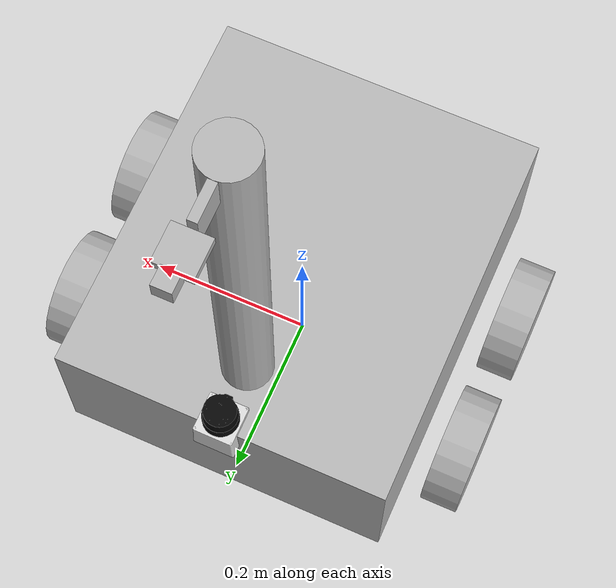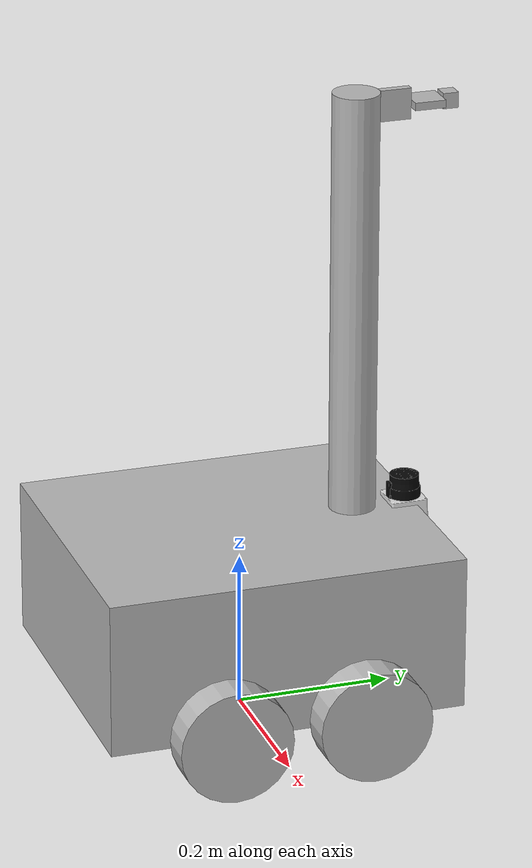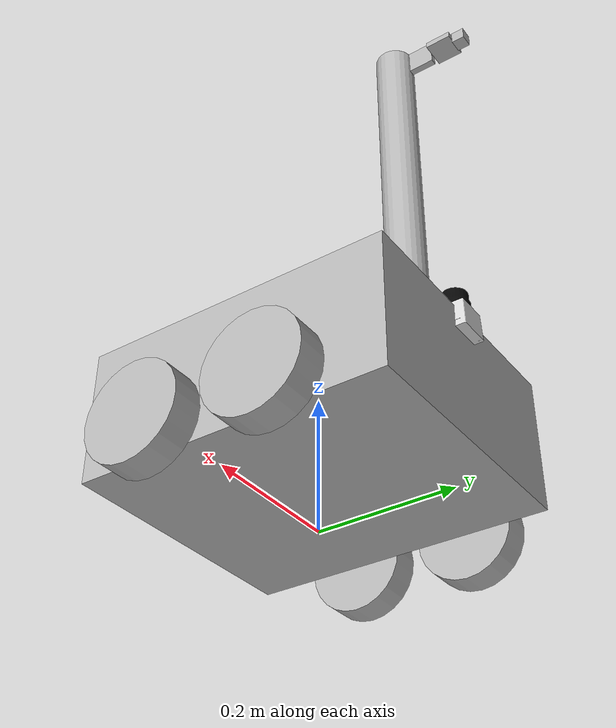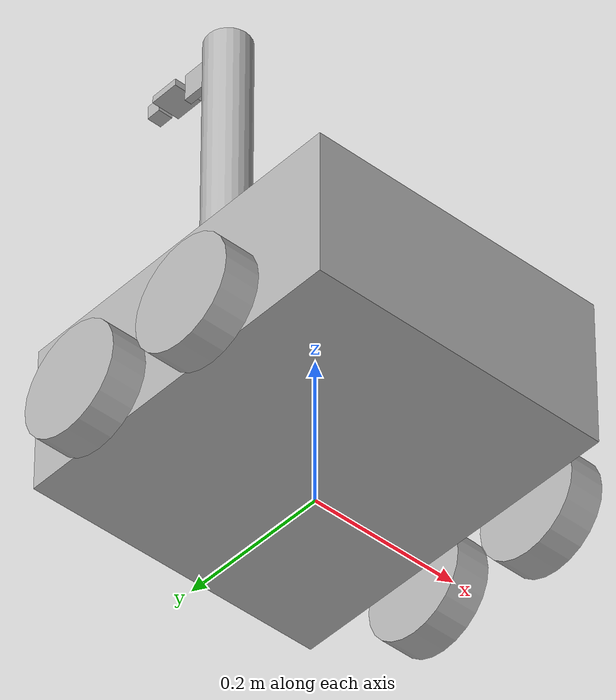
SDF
<?xml version='1.0'?>
<sdf version="1.4">
    <model name="Kobra">
        <self_collide>true</self_collide>
        <plugin name="model_push" filename="/home/USERNAME/.gazebo/models/kobra2/plugins/build/libmodel_push.so" />
        <static>false</static>
        <link name="chassis">
            <inertial>
                <mass>10</mass>
            </inertial>
            <pose>0 0 .15 0 0 0</pose>
            <collision name="collision">
                <geometry>
                    <box>
                        <size>.40 .46 .2</size>
                    </box>
                </geometry>
            </collision>
            <visual name="visual">
                <geometry>
                    <box>
                        <size>.40 .46 .2</size>
                    </box>
                </geometry>
            </visual>
        </link>
        <link name="frontrightwheel">
            <inertial>
                <mass>1</mass>
            </inertial>
            <pose>.2475 .09 .0725 0 1.570796 0</pose>
            <collision name="collision">
                <geometry>
                    <cylinder>
                        <radius>.0725</radius>
                        <length>.045</length>
                    </cylinder>
                </geometry>
            </collision>
            <visual name="visual">
                <geometry>
                    <cylinder>
                        <radius>.0725</radius>
                        <length>.045</length>
                    </cylinder>
                </geometry>
            </visual>
        </link>
        <joint type="revolute" name="frontrighthinge">
            <pose>0 0 .0725 0 0 0</pose>
            <child>frontrightwheel</child>
            <parent>chassis</parent>
            <axis>
                <xyz>-1 0 0</xyz>
            </axis>
        </joint>
        <link name="rearrightwheel">
            <inertial>
                <mass>1</mass>
            </inertial>
            <pose>.2475 -.09 .0725 0 1.570796 0</pose>
            <collision name="collision">
                <geometry>
                    <cylinder>
                        <radius>.0725</radius>
                        <length>.045</length>
                    </cylinder>
                </geometry>
            </collision>
            <visual name="visual">
                <geometry>
                    <cylinder>
                        <radius>.0725</radius>
                        <length>.045</length>
                    </cylinder>
                </geometry>
            </visual>
        </link>
        <joint type="revolute" name="rearrighthinge">
            <pose>0 0 .0725 0 0 0</pose>
            <child>rearrightwheel</child>
            <parent>chassis</parent>
            <axis>
                <xyz>-1 0 0</xyz>
            </axis>
        </joint>
        <link name="frontleftwheel">
            <inertial>
                <mass>1</mass>
            </inertial>
            <pose>-.2475 .09 .0725 0 1.570796 0</pose>
            <collision name="collision">
                <geometry>
                    <cylinder>
                        <radius>.0725</radius>
                        <length>.045</length>
                    </cylinder>
                </geometry>
            </collision>
            <visual name="visual">
                <geometry>
                    <cylinder>
                        <radius>.0725</radius>
                        <length>.045</length>
                    </cylinder>
                </geometry>
            </visual>
        </link>
        <joint type="revolute" name="frontlefthinge">
            <pose>0 0 .0725 0 0 0</pose>
            <child>frontleftwheel</child>
            <parent>chassis</parent>
            <axis>
                <xyz>-1 0 0</xyz>
            </axis>
        </joint>
        <link name="rearleftwheel">
            <inertial>
                <mass>1</mass>
            </inertial>
            <pose>-.2475 -.09 .0725 0 1.570796 0</pose>
            <collision name="collision">
                <geometry>
                    <cylinder>
                        <radius>.0725</radius>
                        <length>.045</length>
                    </cylinder>
                </geometry>
            </collision>
            <visual name="visual">
                <geometry>
                    <cylinder>
                        <radius>.0725</radius>
                        <length>.045</length>
                    </cylinder>
                </geometry>
            </visual>
        </link>
        <joint type="revolute" name="rearlefthinge">
            <pose>0 0 .0725 0 0 0</pose>
            <child>rearleftwheel</child>
            <parent>chassis</parent>
            <axis>
                <xyz>-1 0 0</xyz>
            </axis>
        </joint>
        <link name="verticalarm">
            <gravity>0</gravity>
            <inertial>
                <inertia>
                    <ixx>0</ixx>
                    <ixy>0</ixy>
                    <ixz>0</ixz>
                    <iyy>0</iyy>
                    <iyz>0</iyz>
                    <izz>0</izz>
                </inertia>
            </inertial>
            <pose>0 .15 .525 0 0 0</pose>
            <collision name="collision">
                <geometry>
                    <cylinder>
                        <radius>.03</radius>
                        <length>.55</length>
                    </cylinder>
                </geometry>
            </collision>
            <visual name="visual">
                <geometry>
                    <cylinder>
                        <radius>.03</radius>
                        <length>.55</length>
                    </cylinder>
                </geometry>
            </visual>
        </link>
        <joint type="fixed" name="verticalarmhinge">
            <pose>0 0 0 0 0 0</pose>
            <child>verticalarm</child>
            <parent>chassis</parent>
            <axis>
                <xyz>0 0 1</xyz>
            </axis>
        </joint>
        <link name="lateralcamera">
            <gravity>0</gravity>
            <inertial>
                <inertia>
                    <ixx>0</ixx>
                    <ixy>0</ixy>
                    <ixz>0</ixz>
                    <iyy>0</iyy>
                    <iyz>0</iyz>
                    <izz>0</izz>
                </inertia>
            </inertial>
            <pose>0 .2 .78 0 0 0</pose>
            <collision name="collision">
                <geometry>
                    <box>
                        <size>.01 .04 .04</size>
                    </box>
                </geometry>
            </collision>
            <visual name="visual">
                <geometry>
                    <box>
                        <size>.01 .04 .04</size>
                    </box>
                </geometry>
            </visual>
        </link>
        <joint type="revolute" name="lateralcamerahinge">
            <pose>0 -.02 0 0 0 0</pose>
            <child>lateralcamera</child>
            <parent>verticalarm</parent>
            <axis>
                <xyz>0 0 1</xyz>
            </axis>
            <dynamics>
                <damping>10</damping>
                <friction>0.7</friction>
            </dynamics>
            <lower>-1.0472</lower>
            <upper>1.0472</upper>
        </joint>
        <link name="verticalcamera">
            <gravity>0</gravity>
            <inertial>
                <inertia>
                    <ixx>0</ixx>
                    <ixy>0</ixy>
                    <ixz>0</ixz>
                    <iyy>0</iyy>
                    <iyz>0</iyz>
                    <izz>0</izz>
                </inertia>
            </inertial>
            <pose>0 .24 .78 0 0 0</pose>
            <collision name="collision">
                <geometry>
                    <box>
                        <size>.04 .04 .01</size>
                    </box>
                </geometry>
            </collision>
            <visual name="visual">
                <geometry>
                    <box>
                        <size>.04 .04 .01</size>
                    </box>
                </geometry>
            </visual>
        </link>
        <joint type="revolute" name="verticalcamerahinge">
            <pose>0 -.02 0 0 0 0</pose>
            <child>verticalcamera</child>
            <parent>lateralcamera</parent>
            <axis>
                <xyz>1 0 0</xyz>
            </axis>
            <dynamics>
                <damping>10</damping>
                <friction>0.7</friction>
            </dynamics>
            <lower>-1.0472</lower>
            <upper>1.0472</upper>
        </joint>
        <model name="camera">
            <link name="camera">
                <gravity>0</gravity>
                <pose frame="">0 0 0 0 -0 1.570796</pose>
                <inertial>
                    <mass>0.1</mass>
                </inertial>
                <visual name="visual">
                    <geometry>
                        <box>
                            <size>0.02 0.02 0.02</size>
                        </box>
                    </geometry>
                </visual>
                <sensor name="camera" type="camera">
                    <camera name="__default__">
                        <horizontal_fov>1.047</horizontal_fov>
                        <image>
                            <width>320</width>
                            <height>240</height>
                        </image>
                        <clip>
                            <near>0.1</near>
                            <far>100</far>
                        </clip>
                    </camera>
                    <always_on>1</always_on>
                    <update_rate>30</update_rate>
                    <visualize>1</visualize>
                </sensor>
            </link>
            <pose frame="">0 .27 .78 0 -0 0</pose>
            <joint type="fixed" name="camerahinge">
                <pose>0 0 0 0 0 0</pose>
                <child>camera</child>
                <parent>verticalcamera</parent>
                <axis>
                    <xyz>0 0 0</xyz>
                </axis>
            </joint>
        </model>
        <model name="hokuyo">
            <link name="hokuyo">
                <gravity>0</gravity>
                <inertial>
                    <mass>0.1</mass>
                </inertial>
                <visual name="visual">
                    <geometry>
                        <mesh>
                            <uri>model://hokuyo/meshes/hokuyo.dae</uri>
                        </mesh>
                    </geometry>
                </visual>
                <sensor name="laser" type="ray">
                    <pose frame="">0.01 0 0.03 0 0 0</pose>
                    <ray>
                        <scan>
                            <horizontal>
                                <samples>640</samples>
                                <resolution>1</resolution>
                                <min_angle>-1.04719</min_angle>
                                <max_angle>1.04719</max_angle>
                            </horizontal>
                        </scan>
                        <range>
                            <min>0.08</min>
                            <max>10</max>
                            <resolution>0.01</resolution>
                        </range>
                    </ray>
                    <plugin name="laser" filename="libRayPlugin.so" />
                    <always_on>1</always_on>
                    <update_rate>30</update_rate>
                    <visualize>1</visualize>
                </sensor>
            </link>
            <joint type="fixed" name="hokuyohinge">
                <pose>0 0 0 0 0 0</pose>
                <child>hokuyo</child>
                <parent>chassis</parent>
                <axis>
                    <xyz>-1 0 0</xyz>
                </axis>
            </joint>
            <pose frame="">0 .22 .25 0 0 1.570796</pose>
        </model>
    </model>
</sdf>
